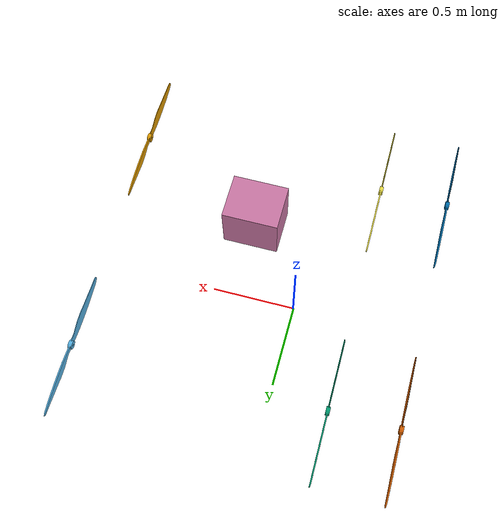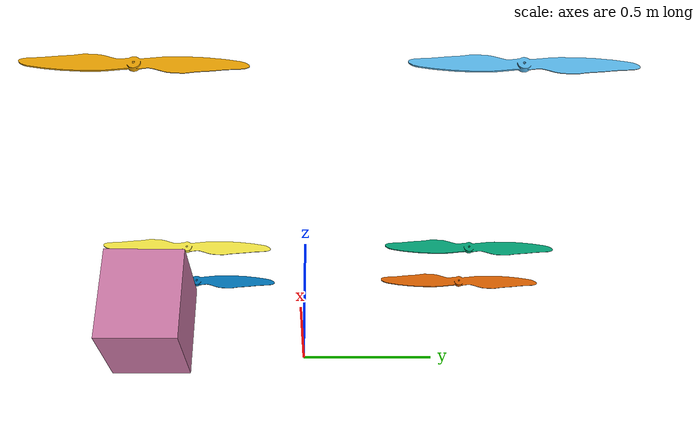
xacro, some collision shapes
<?xml version="1.0" ?>
<robot name="migbot1_ardupilot">
  <link name="helice1">
    <visual>
      <origin xyz="0 0 0" rpy="0 0 0"/>
      <geometry>
        <mesh filename="file:///home/ttrindader/SOFTX-MIG/github/ros_ws/src/xasv-sim/robots/migbot_description/urdf/temp/meshes_WIP/xacro_test2/meshes/helice.dae"/>
      </geometry>
    </visual>
    <collision>
      <origin xyz="1.5002675354480743e-05 -4.023313522338867e-07 1.825392246246338e-07" rpy="-1.5707963267948966 0.0 0.0"/>
      <geometry>
        <cylinder radius="0.03959999978542328" length="0.7714560329914093"/>
      </geometry>
    </collision>
    <inertial>
      <origin xyz="1.5002675354480743e-05 -4.023313522338867e-07 1.825392246246338e-07" rpy="0 0 0"/>
      <mass value="2.280356"/>
      <inertia ixx="0.113989" ixy="0.0" ixz="0.0" iyy="0.001788" iyz="0.0" izz="0.113989"/>
    </inertial>
  </link>
  <link name="helice3">
    <visual>
      <origin xyz="0 0 0" rpy="0 0 0"/>
      <geometry>
        <mesh filename="file:///home/ttrindader/SOFTX-MIG/github/ros_ws/src/xasv-sim/robots/migbot_description/urdf/temp/meshes_WIP/xacro_test2/meshes/helice.dae"/>
      </geometry>
    </visual>
    <collision>
      <origin xyz="1.5002675354480743e-05 -4.023313522338867e-07 1.825392246246338e-07" rpy="-1.5707963267948966 0.0 0.0"/>
      <geometry>
        <cylinder radius="0.03959999978542328" length="0.7714560329914093"/>
      </geometry>
    </collision>
    <inertial>
      <origin xyz="1.5002675354480743e-05 -4.023313522338867e-07 1.825392246246338e-07" rpy="0 0 0"/>
      <mass value="2.280356"/>
      <inertia ixx="0.113989" ixy="0.0" ixz="0.0" iyy="0.001788" iyz="0.0" izz="0.113989"/>
    </inertial>
  </link>
  <link name="helice2">
    <visual>
      <origin xyz="0 0 0" rpy="0 0 0"/>
      <geometry>
        <mesh filename="file:///home/ttrindader/SOFTX-MIG/github/ros_ws/src/xasv-sim/robots/migbot_description/urdf/temp/meshes_WIP/xacro_test2/meshes/helice.dae"/>
      </geometry>
    </visual>
    <collision>
      <origin xyz="1.5002675354480743e-05 -4.023313522338867e-07 1.825392246246338e-07" rpy="-1.5707963267948966 0.0 0.0"/>
      <geometry>
        <cylinder radius="0.03959999978542328" length="0.7714560329914093"/>
      </geometry>
    </collision>
    <inertial>
      <origin xyz="1.5002675354480743e-05 -4.023313522338867e-07 1.825392246246338e-07" rpy="0 0 0"/>
      <mass value="2.280356"/>
      <inertia ixx="0.113989" ixy="0.0" ixz="0.0" iyy="0.001788" iyz="0.0" izz="0.113989"/>
    </inertial>
  </link>
  <link name="helice4">
    <visual>
      <origin xyz="0 0 0" rpy="0 0 0"/>
      <geometry>
        <mesh filename="file:///home/ttrindader/SOFTX-MIG/github/ros_ws/src/xasv-sim/robots/migbot_description/urdf/temp/meshes_WIP/xacro_test2/meshes/helice.dae"/>
      </geometry>
    </visual>
    <collision>
      <origin xyz="-1.5002675354480743e-05 4.023313522338867e-07 1.825392246246338e-07" rpy="-1.5707963267948966 0.0 0.0"/>
      <geometry>
        <cylinder radius="0.03959999978542328" length="0.7714560329914093"/>
      </geometry>
    </collision>
    <inertial>
      <origin xyz="-1.5002675354480743e-05 4.023313522338867e-07 1.825392246246338e-07" rpy="0 0 0"/>
      <mass value="2.280356"/>
      <inertia ixx="0.113989" ixy="0.0" ixz="0.0" iyy="0.001788" iyz="0.0" izz="0.113989"/>
    </inertial>
  </link>
  <link name="helice6">
    <visual>
      <origin xyz="0 0 0" rpy="0 0 0"/>
      <geometry>
        <mesh filename="file:///home/ttrindader/SOFTX-MIG/github/ros_ws/src/xasv-sim/robots/migbot_description/urdf/temp/meshes_WIP/xacro_test2/meshes/helice.dae"/>
      </geometry>
    </visual>
    <collision>
      <origin xyz="1.5002675354480743e-05 -4.023313522338867e-07 1.825392246246338e-07" rpy="-1.5707963267948966 0.0 0.0"/>
      <geometry>
        <cylinder radius="0.03959999978542328" length="0.7714560329914093"/>
      </geometry>
    </collision>
    <inertial>
      <origin xyz="1.5002675354480743e-05 -4.023313522338867e-07 1.825392246246338e-07" rpy="0 0 0"/>
      <mass value="2.280356"/>
      <inertia ixx="0.113989" ixy="0.0" ixz="0.0" iyy="0.001788" iyz="0.0" izz="0.113989"/>
    </inertial>
  </link>
  <link name="helice5">
    <visual>
      <origin xyz="0 0 0" rpy="0 0 0"/>
      <geometry>
        <mesh filename="file:///home/ttrindader/SOFTX-MIG/github/ros_ws/src/xasv-sim/robots/migbot_description/urdf/temp/meshes_WIP/xacro_test2/meshes/helice.dae"/>
      </geometry>
    </visual>
    <collision>
      <origin xyz="1.5002675354480743e-05 -4.023313522338867e-07 1.825392246246338e-07" rpy="-1.5707963267948966 0.0 0.0"/>
      <geometry>
        <cylinder radius="0.03959999978542328" length="0.7714560329914093"/>
      </geometry>
    </collision>
    <inertial>
      <origin xyz="1.5002675354480743e-05 -4.023313522338867e-07 1.825392246246338e-07" rpy="0 0 0"/>
      <mass value="2.280356"/>
      <inertia ixx="0.113989" ixy="0.0" ixz="0.0" iyy="0.001788" iyz="0.0" izz="0.113989"/>
    </inertial>
  </link>
  <link name="base_link">
    <visual>
      <origin xyz="0 0 0" rpy="0 0 0"/>
      <geometry>
        <mesh filename="file:///home/ttrindader/SOFTX-MIG/github/ros_ws/src/xasv-sim/robots/migbot_description/urdf/temp/meshes_WIP/xacro_test2/meshes/base_link.dae"/>
      </geometry>
    </visual>
    <collision>
      <origin xyz="0.3873106837272644 -0.5531401634216309 0.028419017791748047" rpy="0.0 -0.0 0.0"/>
      <geometry>
        <box size="0.3529626131057739 0.286358118057251 0.3340959846973419"/>
      </geometry>
    </collision>
    <collision>
      <origin xyz="0.3873105049133301 0.7467493414878845 0.028419017791748047" rpy="0.0 -0.0 0.0"/>
      <geometry>
        <box size="2.301753044128418 0.28635841608047485 0.3340959846973419"/>
      </geometry>
    </collision>
    <collision>
      <origin xyz="0.3873106837272644 -0.5555058121681213 0.028419017791748047" rpy="0.0 -0.0 0.0"/>
      <geometry>
        <box size="2.301753044128418 0.28635841608047485 0.3340959846973419"/>
      </geometry>
    </collision>
    <collision>
      <origin xyz="0.18785631656646729 0.09725365787744522 0.4897955358028412" rpy="0.0 -0.0 0.0"/>
      <geometry>
        <box size="1.4632989168167114 0.5223059058189392 0.30197805166244507"/>
      </geometry>
    </collision>
    <collision>
      <origin xyz="0.8694584369659424 0.09467645734548569 0.11676308512687683" rpy="0.0 -0.0 0.0"/>
      <geometry>
        <box size="0.0503227561712265 0.05002070218324661 0.4810780882835388"/>
      </geometry>
    </collision>
    <collision>
      <origin xyz="-0.5305383205413818 0.09467624872922897 0.1778692752122879" rpy="0.0 -0.0 0.0"/>
      <geometry>
        <box size="0.09711700677871704 0.05002070963382721 0.3231997489929199"/>
      </geometry>
    </collision>
    <inertial>
      <origin xyz="0.38731059432029724 0.09562176465988159 0.2510777935385704" rpy="0 0 0"/>
      <mass value="1710.000440"/>
      <inertia ixx="446.193056" ixy="0.0" ixz="0.0" iyy="841.541570" iyz="0.0" izz="1114.601226"/>
    </inertial>
  </link>
  <joint name="helice1_joint" type="continuous">
    <parent link="base_link"/>
    <child link="helice1"/>
    <origin xyz="1.0098435878753662 -0.5541407465934753 0.6604171991348267" rpy="0.0 -0.0 0.0"/>
    <axis xyz="0 1 0"/>
    <dynamics damping="0.05" friction="0.05"/>
  </joint>
  <joint name="helice3_joint" type="continuous">
    <parent link="base_link"/>
    <child link="helice3"/>
    <origin xyz="1.009843349456787 0.7462476491928101 0.6604171991348267" rpy="0.0 -0.0 0.0"/>
    <axis xyz="0 1 0"/>
    <dynamics damping="0.05" friction="0.05"/>
  </joint>
  <joint name="helice2_joint" type="continuous">
    <parent link="base_link"/>
    <child link="helice2"/>
    <origin xyz="-0.34517043828964233 0.746247410774231 0.6604171991348267" rpy="0.0 -0.0 0.0"/>
    <axis xyz="0 1 0"/>
    <dynamics damping="0.05" friction="0.05"/>
  </joint>
  <joint name="helice4_joint" type="continuous">
    <parent link="base_link"/>
    <child link="helice4"/>
    <origin xyz="-0.345170259475708 -0.5537497997283936 0.6604171991348267" rpy="0.0 -0.0 0.0"/>
    <axis xyz="0 1 0"/>
    <dynamics damping="0.05" friction="0.05"/>
  </joint>
  <joint name="helice6_joint" type="continuous">
    <parent link="base_link"/>
    <child link="helice6"/>
    <origin xyz="-0.7168805599212646 -0.5537497997283936 0.6604171991348267" rpy="0.0 -0.0 0.0"/>
    <axis xyz="0 1 0"/>
    <dynamics damping="0.05" friction="0.05"/>
  </joint>
  <joint name="helice5_joint" type="continuous">
    <parent link="base_link"/>
    <child link="helice5"/>
    <origin xyz="-0.7168807983398438 0.746498703956604 0.6604171991348267" rpy="0.0 -0.0 0.0"/>
    <axis xyz="0 1 0"/>
    <dynamics damping="0.05" friction="0.05"/>
  </joint>
  <link name="imu_link">
    <collision>
      <origin xyz="0 0 0" rpy="0 0 0"/>
      <geometry>
        <box size="0.05 0.05 0.05"/>
      </geometry>
    </collision>
    <inertial>
      <origin xyz="0 0 0" rpy="0 0 0"/>
      <mass value="0.012500"/>
      <inertia ixx="0.000005" ixy="0.0" ixz="0.0" iyy="0.000005" iyz="0.0" izz="0.000005"/>
    </inertial>
  </link>
  <joint name="imu_joint" type="fixed">
    <parent link="base_link"/>
    <child link="imu_link"/>
    <origin xyz="0 0 0" rpy="0 0 0"/>
  </joint>
</robot>
